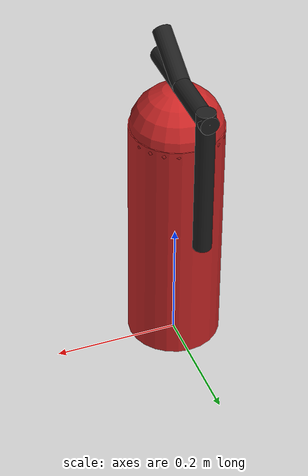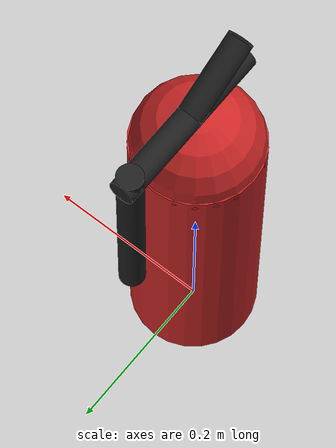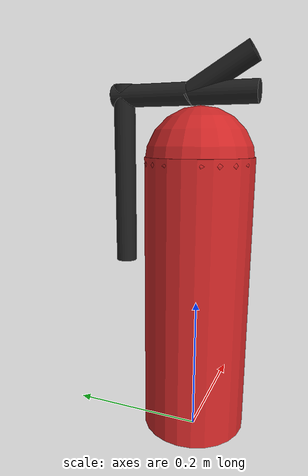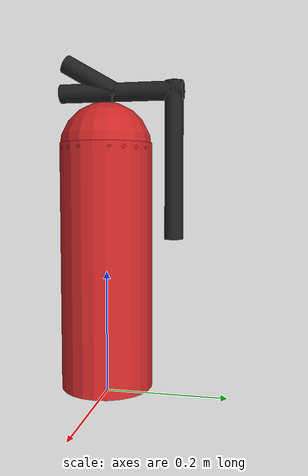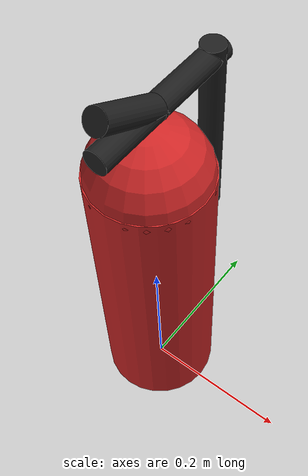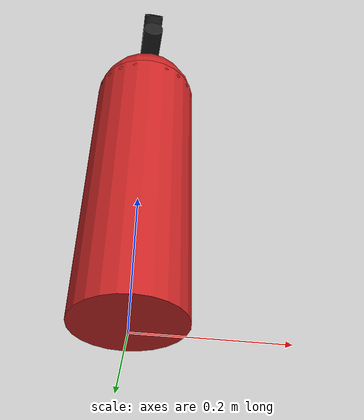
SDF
<?xml version='1.0'?>
<sdf version='1.6'>
  <model name='warehouse_fire_extinguisher'>
    <link name='link_0'>
      <pose frame=''>-0 0 0.21 0 -0 0</pose>
      <inertial>
        <mass>1</mass>
        <inertia>
          <ixx>0.145833</ixx>
          <ixy>0</ixy>
          <ixz>0</ixz>
          <iyy>0.145833</iyy>
          <iyz>0</iyz>
          <izz>0.125</izz>
        </inertia>
        <pose frame=''>0 0 0 0 -0 0</pose>
      </inertial>
      <self_collide>0</self_collide>
      <kinematic>0</kinematic>
      <visual name='visual'>
        <pose frame=''>0 0 0 0 -0 0</pose>
        <geometry>
          <cylinder>
            <radius>0.075</radius>
            <length>0.4</length>
          </cylinder>
        </geometry>
        <material>
          <lighting>1</lighting>
          <script>
            <uri>file://media/materials/scripts/gazebo.material</uri>
            <name>Gazebo/RedBright</name>
          </script>
          <ambient>0.87 0.26 0.07 0</ambient>
          <diffuse>0.87 0.26 0.07 0</diffuse>
          <specular>0.87 0.26 0.07 1</specular>
          <emissive>0 0 0 1</emissive>
          <shader type='vertex'>
            <normal_map>__default__</normal_map>
          </shader>
        </material>
        <cast_shadows>1</cast_shadows>
        <transparency>0</transparency>
      </visual>
      <collision name='collision'>
        <laser_retro>0</laser_retro>
        <max_contacts>10</max_contacts>
        <pose frame=''>0 0 0 0 -0 0</pose>
        <geometry>
          <cylinder>
            <radius>0.075</radius>
            <length>0.4</length>
          </cylinder>
        </geometry>
        <surface>
          <friction>
            <ode>
              <mu>1</mu>
              <mu2>1</mu2>
              <fdir1>0 0 0</fdir1>
              <slip1>0</slip1>
              <slip2>0</slip2>
            </ode>
            <torsional>
              <coefficient>1</coefficient>
              <patch_radius>0</patch_radius>
              <surface_radius>0</surface_radius>
              <use_patch_radius>1</use_patch_radius>
              <ode>
                <slip>0</slip>
              </ode>
            </torsional>
          </friction>
          <bounce>
            <restitution_coefficient>0</restitution_coefficient>
            <threshold>1e+06</threshold>
          </bounce>
          <contact>
            <collide_without_contact>0</collide_without_contact>
            <collide_without_contact_bitmask>1</collide_without_contact_bitmask>
            <collide_bitmask>1</collide_bitmask>
            <ode>
              <soft_cfm>0</soft_cfm>
              <soft_erp>0.2</soft_erp>
              <kp>1e+13</kp>
              <kd>1</kd>
              <max_vel>0.01</max_vel>
              <min_depth>0</min_depth>
            </ode>
            <bullet>
              <split_impulse>1</split_impulse>
              <split_impulse_penetration_threshold>-0.01</split_impulse_penetration_threshold>
              <soft_cfm>0</soft_cfm>
              <soft_erp>0.2</soft_erp>
              <kp>1e+13</kp>
              <kd>1</kd>
            </bullet>
          </contact>
        </surface>
      </collision>
    </link>
    <link name='link_0_0'>
      <pose frame=''>-0 0 0.40118 0 0 -1e-06</pose>
      <inertial>
        <mass>1</mass>
        <inertia>
          <ixx>0.1</ixx>
          <ixy>0</ixy>
          <ixz>0</ixz>
          <iyy>0.1</iyy>
          <iyz>0</iyz>
          <izz>0.1</izz>
        </inertia>
        <pose frame=''>0 0 0 0 -0 0</pose>
      </inertial>
      <self_collide>0</self_collide>
      <kinematic>0</kinematic>
      <visual name='visual'>
        <pose frame=''>0 0 0 0 -0 0</pose>
        <geometry>
          <sphere>
            <radius>0.075</radius>
          </sphere>
        </geometry>
        <material>
          <lighting>1</lighting>
          <script>
            <uri>file://media/materials/scripts/gazebo.material</uri>
            <name>Gazebo/RedBright</name>
          </script>
          <ambient>0.87 0.26 0.07 0</ambient>
          <diffuse>0.87 0.26 0.07 0</diffuse>
          <specular>0.87 0.26 0.07 1</specular>
          <emissive>0 0 0 1</emissive>
          <shader type='vertex'>
            <normal_map>__default__</normal_map>
          </shader>
        </material>
        <cast_shadows>1</cast_shadows>
        <transparency>0</transparency>
      </visual>
      <collision name='collision'>
        <laser_retro>0</laser_retro>
        <max_contacts>10</max_contacts>
        <pose frame=''>0 0 0 0 -0 0</pose>
        <geometry>
          <sphere>
            <radius>0.075</radius>
          </sphere>
        </geometry>
        <surface>
          <friction>
            <ode>
              <mu>1</mu>
              <mu2>1</mu2>
              <fdir1>0 0 0</fdir1>
              <slip1>0</slip1>
              <slip2>0</slip2>
            </ode>
            <torsional>
              <coefficient>1</coefficient>
              <patch_radius>0</patch_radius>
              <surface_radius>0</surface_radius>
              <use_patch_radius>1</use_patch_radius>
              <ode>
                <slip>0</slip>
              </ode>
            </torsional>
          </friction>
          <bounce>
            <restitution_coefficient>0</restitution_coefficient>
            <threshold>1e+06</threshold>
          </bounce>
          <contact>
            <collide_without_contact>0</collide_without_contact>
            <collide_without_contact_bitmask>1</collide_without_contact_bitmask>
            <collide_bitmask>1</collide_bitmask>
            <ode>
              <soft_cfm>0</soft_cfm>
              <soft_erp>0.2</soft_erp>
              <kp>1e+13</kp>
              <kd>1</kd>
              <max_vel>0.01</max_vel>
              <min_depth>0</min_depth>
            </ode>
            <bullet>
              <split_impulse>1</split_impulse>
              <split_impulse_penetration_threshold>-0.01</split_impulse_penetration_threshold>
              <soft_cfm>0</soft_cfm>
              <soft_erp>0.2</soft_erp>
              <kp>1e+13</kp>
              <kd>1</kd>
            </bullet>
          </contact>
        </surface>
      </collision>
    </link>
    <link name='link_0_1'>
      <pose frame=''>-1e-06 0.025336 0.491185 1.5707 -0 4.7e-05</pose>
      <inertial>
        <mass>1.34742</mass>
        <inertia>
          <ixx>0.288069</ixx>
          <ixy>0</ixy>
          <ixz>0</ixz>
          <iyy>0.288069</iyy>
          <iyz>0</iyz>
          <izz>0.168427</izz>
        </inertia>
        <pose frame=''>0 0 0 0 -0 0</pose>
      </inertial>
      <self_collide>0</self_collide>
      <kinematic>0</kinematic>
      <visual name='visual'>
        <pose frame=''>0 0 0 0 -0 0</pose>
        <geometry>
          <cylinder>
            <radius>0.015</radius>
            <length>0.202123</length>
          </cylinder>
        </geometry>
        <material>
          <lighting>1</lighting>
          <script>
            <uri>file://media/materials/scripts/gazebo.material</uri>
            <name>Gazebo/Black</name>
          </script>
          <ambient>0 0 0 1</ambient>
          <diffuse>0 0 0 1</diffuse>
          <specular>0.1 0.1 0.1 1</specular>
          <emissive>0 0 0 1</emissive>
          <shader type='vertex'>
            <normal_map>__default__</normal_map>
          </shader>
        </material>
        <cast_shadows>1</cast_shadows>
        <transparency>0</transparency>
      </visual>
      <collision name='collision'>
        <laser_retro>0</laser_retro>
        <max_contacts>10</max_contacts>
        <pose frame=''>0 0 0 0 -0 0</pose>
        <geometry>
          <cylinder>
            <radius>0.015</radius>
            <length>0.202123</length>
          </cylinder>
        </geometry>
        <surface>
          <friction>
            <ode>
              <mu>1</mu>
              <mu2>1</mu2>
              <fdir1>0 0 0</fdir1>
              <slip1>0</slip1>
              <slip2>0</slip2>
            </ode>
            <torsional>
              <coefficient>1</coefficient>
              <patch_radius>0</patch_radius>
              <surface_radius>0</surface_radius>
              <use_patch_radius>1</use_patch_radius>
              <ode>
                <slip>0</slip>
              </ode>
            </torsional>
          </friction>
          <bounce>
            <restitution_coefficient>0</restitution_coefficient>
            <threshold>1e+06</threshold>
          </bounce>
          <contact>
            <collide_without_contact>0</collide_without_contact>
            <collide_without_contact_bitmask>1</collide_without_contact_bitmask>
            <collide_bitmask>1</collide_bitmask>
            <ode>
              <soft_cfm>0</soft_cfm>
              <soft_erp>0.2</soft_erp>
              <kp>1e+13</kp>
              <kd>1</kd>
              <max_vel>0.01</max_vel>
              <min_depth>0</min_depth>
            </ode>
            <bullet>
              <split_impulse>1</split_impulse>
              <split_impulse_penetration_threshold>-0.01</split_impulse_penetration_threshold>
              <soft_cfm>0</soft_cfm>
              <soft_erp>0.2</soft_erp>
              <kp>1e+13</kp>
              <kd>1</kd>
            </bullet>
          </contact>
        </surface>
      </collision>
    </link>
    <link name='link_0_1_clone'>
      <pose frame=''>-9e-05 -0.024255 0.51417 1.04719 -4e-06 -0.003655</pose>
      <inertial>
        <mass>1</mass>
        <inertia>
          <ixx>0.145833</ixx>
          <ixy>0</ixy>
          <ixz>0</ixz>
          <iyy>0.145833</iyy>
          <iyz>0</iyz>
          <izz>0.125</izz>
        </inertia>
        <pose frame=''>0 0 0 0 -0 0</pose>
      </inertial>
      <self_collide>0</self_collide>
      <kinematic>0</kinematic>
      <visual name='visual'>
        <pose frame=''>0 0 0 0 -0 0</pose>
        <geometry>
          <cylinder>
            <radius>0.015</radius>
            <length>0.1</length>
          </cylinder>
        </geometry>
        <material>
          <lighting>1</lighting>
          <script>
            <uri>file://media/materials/scripts/gazebo.material</uri>
            <name>Gazebo/Black</name>
          </script>
          <ambient>0 0 0 1</ambient>
          <diffuse>0 0 0 1</diffuse>
          <specular>0.1 0.1 0.1 1</specular>
          <emissive>0 0 0 1</emissive>
          <shader type='vertex'>
            <normal_map>__default__</normal_map>
          </shader>
        </material>
        <cast_shadows>1</cast_shadows>
        <transparency>0</transparency>
      </visual>
      <collision name='collision'>
        <laser_retro>0</laser_retro>
        <max_contacts>10</max_contacts>
        <pose frame=''>0 0 0 0 -0 0</pose>
        <geometry>
          <cylinder>
            <radius>0.015</radius>
            <length>0.1</length>
          </cylinder>
        </geometry>
        <surface>
          <friction>
            <ode>
              <mu>1</mu>
              <mu2>1</mu2>
              <fdir1>0 0 0</fdir1>
              <slip1>0</slip1>
              <slip2>0</slip2>
            </ode>
            <torsional>
              <coefficient>1</coefficient>
              <patch_radius>0</patch_radius>
              <surface_radius>0</surface_radius>
              <use_patch_radius>1</use_patch_radius>
              <ode>
                <slip>0</slip>
              </ode>
            </torsional>
          </friction>
          <bounce>
            <restitution_coefficient>0</restitution_coefficient>
            <threshold>1e+06</threshold>
          </bounce>
          <contact>
            <collide_without_contact>0</collide_without_contact>
            <collide_without_contact_bitmask>1</collide_without_contact_bitmask>
            <collide_bitmask>1</collide_bitmask>
            <ode>
              <soft_cfm>0</soft_cfm>
              <soft_erp>0.2</soft_erp>
              <kp>1e+13</kp>
              <kd>1</kd>
              <max_vel>0.01</max_vel>
              <min_depth>0</min_depth>
            </ode>
            <bullet>
              <split_impulse>1</split_impulse>
              <split_impulse_penetration_threshold>-0.01</split_impulse_penetration_threshold>
              <soft_cfm>0</soft_cfm>
              <soft_erp>0.2</soft_erp>
              <kp>1e+13</kp>
              <kd>1</kd>
            </bullet>
          </contact>
        </surface>
      </collision>
    </link>
    <link name='link_0_1_clone_0'>
      <pose frame=''>0.000318 0.111398 0.381194 0 -0 0</pose>
      <inertial>
        <mass>1</mass>
        <inertia>
          <ixx>0.145833</ixx>
          <ixy>0</ixy>
          <ixz>0</ixz>
          <iyy>0.145833</iyy>
          <iyz>0</iyz>
          <izz>0.125</izz>
        </inertia>
        <pose frame=''>0 0 0 0 -0 0</pose>
      </inertial>
      <self_collide>0</self_collide>
      <kinematic>0</kinematic>
      <visual name='visual'>
        <pose frame=''>0 0 0 0 -0 0</pose>
        <geometry>
          <cylinder>
            <radius>0.015</radius>
            <length>0.25</length>
          </cylinder>
        </geometry>
        <material>
          <lighting>1</lighting>
          <script>
            <uri>file://media/materials/scripts/gazebo.material</uri>
            <name>Gazebo/Black</name>
          </script>
          <ambient>0 0 0 1</ambient>
          <diffuse>0 0 0 1</diffuse>
          <specular>0.1 0.1 0.1 1</specular>
          <emissive>0 0 0 1</emissive>
          <shader type='vertex'>
            <normal_map>__default__</normal_map>
          </shader>
        </material>
        <cast_shadows>1</cast_shadows>
        <transparency>0</transparency>
      </visual>
      <collision name='collision'>
        <laser_retro>0</laser_retro>
        <max_contacts>10</max_contacts>
        <pose frame=''>0 0 0 0 -0 0</pose>
        <geometry>
          <cylinder>
            <radius>0.015</radius>
            <length>0.25</length>
          </cylinder>
        </geometry>
        <surface>
          <friction>
            <ode>
              <mu>1</mu>
              <mu2>1</mu2>
              <fdir1>0 0 0</fdir1>
              <slip1>0</slip1>
              <slip2>0</slip2>
            </ode>
            <torsional>
              <coefficient>1</coefficient>
              <patch_radius>0</patch_radius>
              <surface_radius>0</surface_radius>
              <use_patch_radius>1</use_patch_radius>
              <ode>
                <slip>0</slip>
              </ode>
            </torsional>
          </friction>
          <bounce>
            <restitution_coefficient>0</restitution_coefficient>
            <threshold>1e+06</threshold>
          </bounce>
          <contact>
            <collide_without_contact>0</collide_without_contact>
            <collide_without_contact_bitmask>1</collide_without_contact_bitmask>
            <collide_bitmask>1</collide_bitmask>
            <ode>
              <soft_cfm>0</soft_cfm>
              <soft_erp>0.2</soft_erp>
              <kp>1e+13</kp>
              <kd>1</kd>
              <max_vel>0.01</max_vel>
              <min_depth>0</min_depth>
            </ode>
            <bullet>
              <split_impulse>1</split_impulse>
              <split_impulse_penetration_threshold>-0.01</split_impulse_penetration_threshold>
              <soft_cfm>0</soft_cfm>
              <soft_erp>0.2</soft_erp>
              <kp>1e+13</kp>
              <kd>1</kd>
            </bullet>
          </contact>
        </surface>
      </collision>
    </link>
    <joint name='link_0_0_JOINT_0' type='fixed'>
      <parent>link_0_0</parent>
      <child>link_0</child>
      <pose frame=''>0 0 0 0 -0 0</pose>
      <physics>
        <ode>
          <limit>
            <cfm>0</cfm>
            <erp>0.2</erp>
          </limit>
          <suspension>
            <cfm>0</cfm>
            <erp>0.2</erp>
          </suspension>
        </ode>
      </physics>
    </joint>
    <joint name='link_0_0_JOINT_1' type='fixed'>
      <parent>link_0_0</parent>
      <child>link_0_1</child>
      <pose frame=''>0 0 0 0 -0 0</pose>
      <physics>
        <ode>
          <limit>
            <cfm>0</cfm>
            <erp>0.2</erp>
          </limit>
          <suspension>
            <cfm>0</cfm>
            <erp>0.2</erp>
          </suspension>
        </ode>
      </physics>
    </joint>
    <joint name='link_0_1_JOINT_0' type='fixed'>
      <parent>link_0_1</parent>
      <child>link_0_1_clone</child>
      <pose frame=''>0 0 0 0 -0 0</pose>
      <physics>
        <ode>
          <limit>
            <cfm>0</cfm>
            <erp>0.2</erp>
          </limit>
          <suspension>
            <cfm>0</cfm>
            <erp>0.2</erp>
          </suspension>
        </ode>
      </physics>
    </joint>
    <joint name='link_0_1_JOINT_2' type='fixed'>
      <parent>link_0_1</parent>
      <child>link_0_0</child>
      <pose frame=''>0 0 0 0 -0 0</pose>
      <physics>
        <ode>
          <limit>
            <cfm>0</cfm>
            <erp>0.2</erp>
          </limit>
          <suspension>
            <cfm>0</cfm>
            <erp>0.2</erp>
          </suspension>
        </ode>
      </physics>
    </joint>
    <joint name='link_0_1_JOINT_3' type='fixed'>
      <parent>link_0_1</parent>
      <child>link_0_1_clone_0</child>
      <pose frame=''>0 0 0 0 -0 0</pose>
      <physics>
        <ode>
          <limit>
            <cfm>0</cfm>
            <erp>0.2</erp>
          </limit>
          <suspension>
            <cfm>0</cfm>
            <erp>0.2</erp>
          </suspension>
        </ode>
      </physics>
    </joint>
    <joint name='link_0_1_clone_0_JOINT_4' type='fixed'>
      <parent>link_0_1_clone_0</parent>
      <child>link_0_1</child>
      <pose frame=''>0 0 0 0 -0 0</pose>
      <physics>
        <ode>
          <limit>
            <cfm>0</cfm>
            <erp>0.2</erp>
          </limit>
          <suspension>
            <cfm>0</cfm>
            <erp>0.2</erp>
          </suspension>
        </ode>
      </physics>
    </joint>
    <joint name='link_0_1_clone_JOINT_1' type='fixed'>
      <parent>link_0_1_clone</parent>
      <child>link_0_1</child>
      <pose frame=''>0 0 0 0 -0 0</pose>
      <physics>
        <ode>
          <limit>
            <cfm>0</cfm>
            <erp>0.2</erp>
          </limit>
          <suspension>
            <cfm>0</cfm>
            <erp>0.2</erp>
          </suspension>
        </ode>
      </physics>
    </joint>
    <joint name='link_0_JOINT_0' type='fixed'>
      <parent>link_0</parent>
      <child>link_0_0</child>
      <pose frame=''>0 0 0 0 -0 0</pose>
      <physics>
        <ode>
          <limit>
            <cfm>0</cfm>
            <erp>0.2</erp>
          </limit>
          <suspension>
            <cfm>0</cfm>
            <erp>0.2</erp>
          </suspension>
        </ode>
      </physics>
    </joint>
    <static>0</static>
    <allow_auto_disable>1</allow_auto_disable>
  </model>
</sdf>
